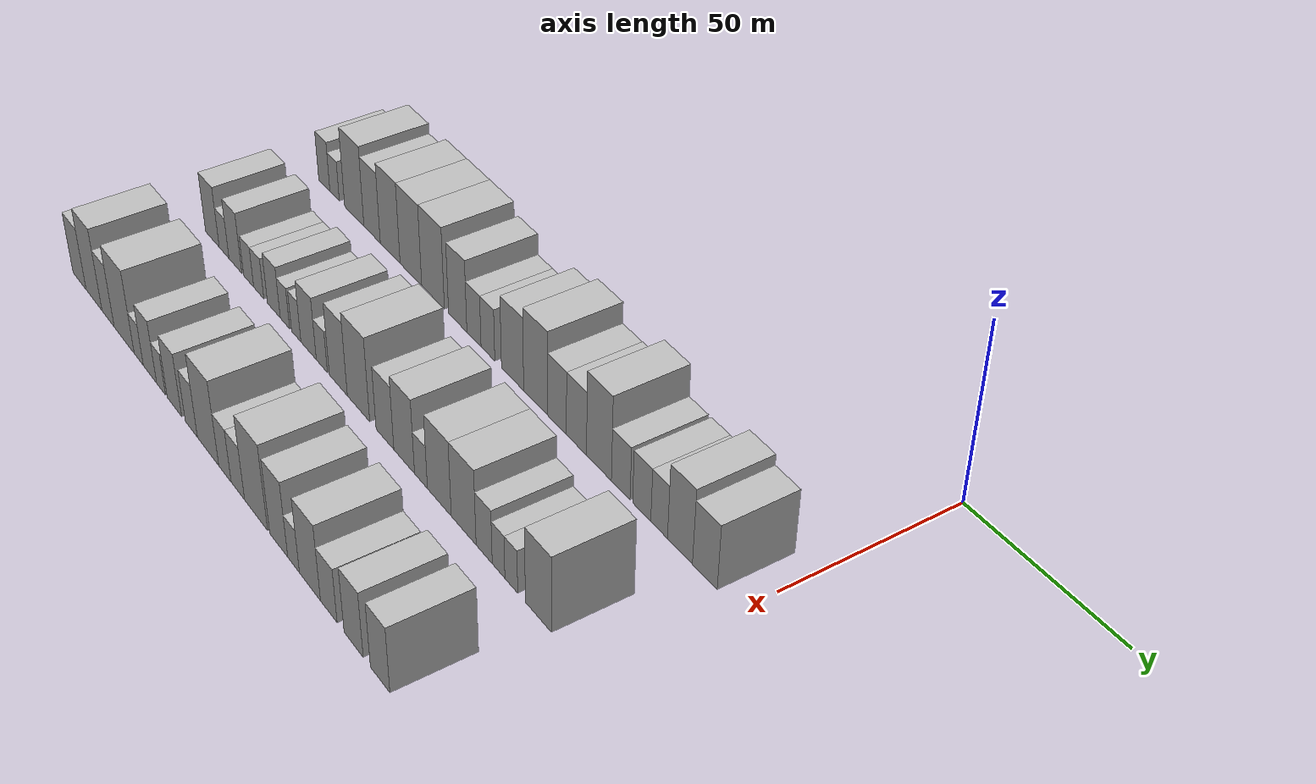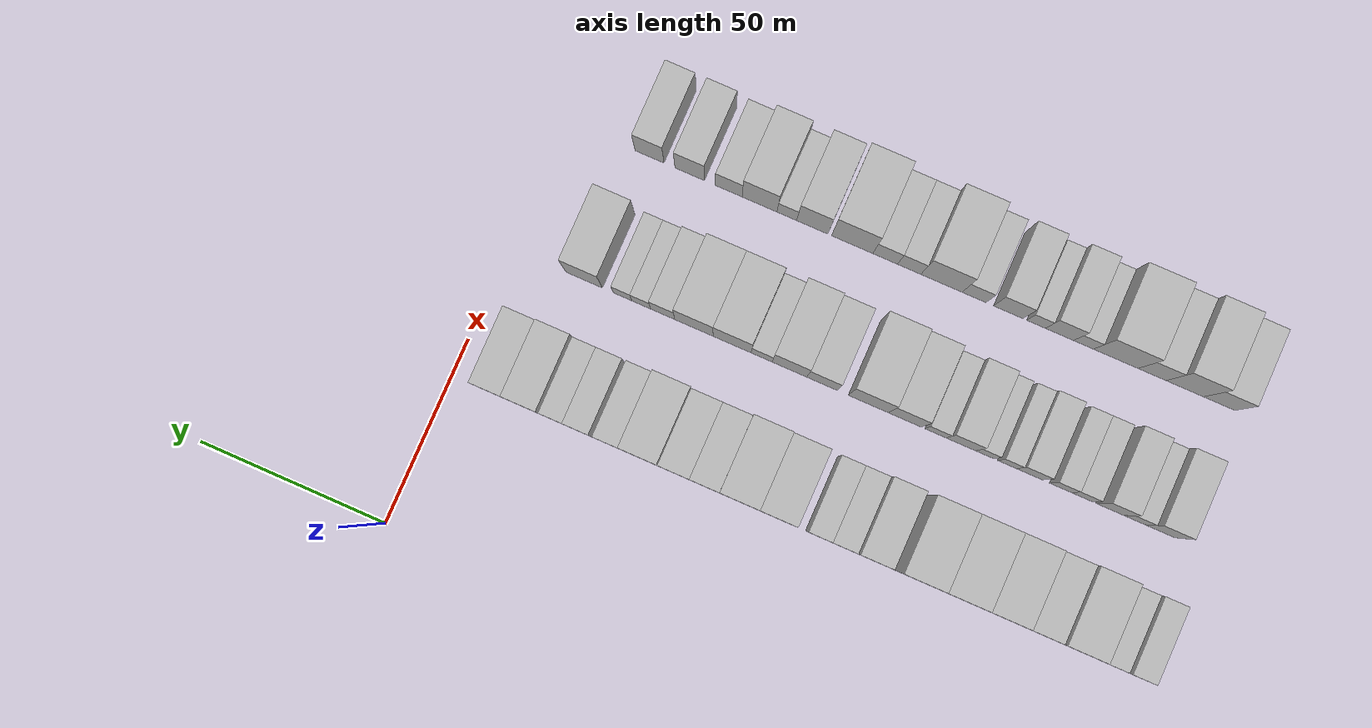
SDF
<sdf version="1.6">
 <world name="default">
  <model name="building_20">
   <static>1</static>
   <pose>50.0000 -182.0511 0 0.000000 0.000000 0.000000</pose>
   <link name="link">
    <pose>0 0 7.50 0 0 0</pose>
    <collision name="collision"><geometry><box><size>20.0000 6.3132 15.0000</size></box></geometry></collision>
    <visual name="visual">
     <cast_shadows>0</cast_shadows>
     <geometry><box><size>20.0000 6.3132 15.0000</size></box></geometry>
     <material>
      <script>
       <uri>model://HANNAS_wall/materials/scripts</uri>
       <uri>model://HANNAS_wall/materials/textures</uri>
       <name>vrc/HANNAS_wall</name>
      </script>
     </material>
    </visual>
   </link>
  </model>
  <model name="building_21">
   <static>1</static>
   <pose>50.0000 -176.2646 0 0.000000 0.000000 0.000000</pose>
   <link name="link">
    <pose>0 0 6.00 0 0 0</pose>
    <collision name="collision"><geometry><box><size>20.0000 5.2599 12.0000</size></box></geometry></collision>
    <visual name="visual">
     <cast_shadows>0</cast_shadows>
     <geometry><box><size>20.0000 5.2599 12.0000</size></box></geometry>
     <material>
      <script>
       <uri>model://HANNAS_wall/materials/scripts</uri>
       <uri>model://HANNAS_wall/materials/textures</uri>
       <name>vrc/HANNAS_wall</name>
      </script>
     </material>
    </visual>
   </link>
  </model>
  <model name="building_22">
   <static>1</static>
   <pose>50.0000 -165.3930 0 0.000000 0.000000 0.000000</pose>
   <link name="link">
    <pose>0 0 12.00 0 0 0</pose>
    <collision name="collision"><geometry><box><size>20.0000 10.4833 24.0000</size></box></geometry></collision>
    <visual name="visual">
     <cast_shadows>0</cast_shadows>
     <geometry><box><size>20.0000 10.4833 24.0000</size></box></geometry>
     <material>
      <script>
       <uri>model://HANNAS_wall/materials/scripts</uri>
       <uri>model://HANNAS_wall/materials/textures</uri>
       <name>vrc/HANNAS_wall</name>
      </script>
     </material>
    </visual>
   </link>
  </model>
  <model name="building_23">
   <static>1</static>
   <pose>50.0000 -155.7915 0 0.000000 0.000000 0.000000</pose>
   <link name="link">
    <pose>0 0 10.50 0 0 0</pose>
    <collision name="collision"><geometry><box><size>20.0000 8.7197 21.0000</size></box></geometry></collision>
    <visual name="visual">
     <cast_shadows>0</cast_shadows>
     <geometry><box><size>20.0000 8.7197 21.0000</size></box></geometry>
     <material>
      <script>
       <uri>model://HANNAS_wall/materials/scripts</uri>
       <uri>model://HANNAS_wall/materials/textures</uri>
       <name>vrc/HANNAS_wall</name>
      </script>
     </material>
    </visual>
   </link>
  </model>
  <model name="building_24">
   <static>1</static>
   <pose>50.0000 -146.2969 0 0.000000 0.000000 0.000000</pose>
   <link name="link">
    <pose>0 0 12.00 0 0 0</pose>
    <collision name="collision"><geometry><box><size>20.0000 10.2695 24.0000</size></box></geometry></collision>
    <visual name="visual">
     <cast_shadows>0</cast_shadows>
     <geometry><box><size>20.0000 10.2695 24.0000</size></box></geometry>
     <material>
      <script>
       <uri>model://HANNAS_wall/materials/scripts</uri>
       <uri>model://HANNAS_wall/materials/textures</uri>
       <name>vrc/HANNAS_wall</name>
      </script>
     </material>
    </visual>
   </link>
  </model>
  <model name="building_25">
   <static>1</static>
   <pose>50.0000 -135.6973 0 0.000000 0.000000 0.000000</pose>
   <link name="link">
    <pose>0 0 12.00 0 0 0</pose>
    <collision name="collision"><geometry><box><size>20.0000 10.9298 24.0000</size></box></geometry></collision>
    <visual name="visual">
     <cast_shadows>0</cast_shadows>
     <geometry><box><size>20.0000 10.9298 24.0000</size></box></geometry>
     <material>
      <script>
       <uri>model://HANNAS_wall/materials/scripts</uri>
       <uri>model://HANNAS_wall/materials/textures</uri>
       <name>vrc/HANNAS_wall</name>
      </script>
     </material>
    </visual>
   </link>
  </model>
  <model name="building_26">
   <static>1</static>
   <pose>50.0000 -124.6595 0 0.000000 0.000000 0.000000</pose>
   <link name="link">
    <pose>0 0 12.00 0 0 0</pose>
    <collision name="collision"><geometry><box><size>20.0000 11.1458 24.0000</size></box></geometry></collision>
    <visual name="visual">
     <cast_shadows>0</cast_shadows>
     <geometry><box><size>20.0000 11.1458 24.0000</size></box></geometry>
     <material>
      <script>
       <uri>model://HANNAS_wall/materials/scripts</uri>
       <uri>model://HANNAS_wall/materials/textures</uri>
       <name>vrc/HANNAS_wall</name>
      </script>
     </material>
    </visual>
   </link>
  </model>
  <model name="building_27">
   <static>1</static>
   <pose>50.0000 -112.7458 0 0.000000 0.000000 0.000000</pose>
   <link name="link">
    <pose>0 0 10.50 0 0 0</pose>
    <collision name="collision"><geometry><box><size>20.0000 8.6816 21.0000</size></box></geometry></collision>
    <visual name="visual">
     <cast_shadows>0</cast_shadows>
     <geometry><box><size>20.0000 8.6816 21.0000</size></box></geometry>
     <material>
      <script>
       <uri>model://HANNAS_wall/materials/scripts</uri>
       <uri>model://HANNAS_wall/materials/textures</uri>
       <name>vrc/HANNAS_wall</name>
      </script>
     </material>
    </visual>
   </link>
  </model>
  <model name="building_28">
   <static>1</static>
   <pose>50.0000 -105.1109 0 0.000000 0.000000 0.000000</pose>
   <link name="link">
    <pose>0 0 7.50 0 0 0</pose>
    <collision name="collision"><geometry><box><size>20.0000 6.5881 15.0000</size></box></geometry></collision>
    <visual name="visual">
     <cast_shadows>0</cast_shadows>
     <geometry><box><size>20.0000 6.5881 15.0000</size></box></geometry>
     <material>
      <script>
       <uri>model://HANNAS_wall/materials/scripts</uri>
       <uri>model://HANNAS_wall/materials/textures</uri>
       <name>vrc/HANNAS_wall</name>
      </script>
     </material>
    </visual>
   </link>
  </model>
  <model name="building_29">
   <static>1</static>
   <pose>50.0000 -98.6793 0 0.000000 0.000000 0.000000</pose>
   <link name="link">
    <pose>0 0 7.50 0 0 0</pose>
    <collision name="collision"><geometry><box><size>20.0000 6.2752 15.0000</size></box></geometry></collision>
    <visual name="visual">
     <cast_shadows>0</cast_shadows>
     <geometry><box><size>20.0000 6.2752 15.0000</size></box></geometry>
     <material>
      <script>
       <uri>model://HANNAS_wall/materials/scripts</uri>
       <uri>model://HANNAS_wall/materials/textures</uri>
       <name>vrc/HANNAS_wall</name>
      </script>
     </material>
    </visual>
   </link>
  </model>
  <model name="building_30">
   <static>1</static>
   <pose>50.0000 -87.6267 0 0.000000 0.000000 0.000000</pose>
   <link name="link">
    <pose>0 0 10.50 0 0 0</pose>
    <collision name="collision"><geometry><box><size>20.0000 9.8299 21.0000</size></box></geometry></collision>
    <visual name="visual">
     <cast_shadows>0</cast_shadows>
     <geometry><box><size>20.0000 9.8299 21.0000</size></box></geometry>
     <material>
      <script>
       <uri>model://HANNAS_wall/materials/scripts</uri>
       <uri>model://HANNAS_wall/materials/textures</uri>
       <name>vrc/HANNAS_wall</name>
      </script>
     </material>
    </visual>
   </link>
  </model>
  <model name="building_31">
   <static>1</static>
   <pose>50.0000 -77.5489 0 0.000000 0.000000 0.000000</pose>
   <link name="link">
    <pose>0 0 12.00 0 0 0</pose>
    <collision name="collision"><geometry><box><size>20.0000 10.3258 24.0000</size></box></geometry></collision>
    <visual name="visual">
     <cast_shadows>0</cast_shadows>
     <geometry><box><size>20.0000 10.3258 24.0000</size></box></geometry>
     <material>
      <script>
       <uri>model://HANNAS_wall/materials/scripts</uri>
       <uri>model://HANNAS_wall/materials/textures</uri>
       <name>vrc/HANNAS_wall</name>
      </script>
     </material>
    </visual>
   </link>
  </model>
  <model name="building_32">
   <static>1</static>
   <pose>50.0000 -68.4582 0 0.000000 0.000000 0.000000</pose>
   <link name="link">
    <pose>0 0 9.00 0 0 0</pose>
    <collision name="collision"><geometry><box><size>20.0000 7.8557 18.0000</size></box></geometry></collision>
    <visual name="visual">
     <cast_shadows>0</cast_shadows>
     <geometry><box><size>20.0000 7.8557 18.0000</size></box></geometry>
     <material>
      <script>
       <uri>model://HANNAS_wall/materials/scripts</uri>
       <uri>model://HANNAS_wall/materials/textures</uri>
       <name>vrc/HANNAS_wall</name>
      </script>
     </material>
    </visual>
   </link>
  </model>
  <model name="building_33">
   <static>1</static>
   <pose>50.0000 -60.4181 0 0.000000 0.000000 0.000000</pose>
   <link name="link">
    <pose>0 0 9.00 0 0 0</pose>
    <collision name="collision"><geometry><box><size>20.0000 8.2246 18.0000</size></box></geometry></collision>
    <visual name="visual">
     <cast_shadows>0</cast_shadows>
     <geometry><box><size>20.0000 8.2246 18.0000</size></box></geometry>
     <material>
      <script>
       <uri>model://HANNAS_wall/materials/scripts</uri>
       <uri>model://HANNAS_wall/materials/textures</uri>
       <name>vrc/HANNAS_wall</name>
      </script>
     </material>
    </visual>
   </link>
  </model>
  <model name="building_34">
   <static>1</static>
   <pose>50.0000 -51.3394 0 0.000000 0.000000 0.000000</pose>
   <link name="link">
    <pose>0 0 12.00 0 0 0</pose>
    <collision name="collision"><geometry><box><size>20.0000 9.9328 24.0000</size></box></geometry></collision>
    <visual name="visual">
     <cast_shadows>0</cast_shadows>
     <geometry><box><size>20.0000 9.9328 24.0000</size></box></geometry>
     <material>
      <script>
       <uri>model://HANNAS_wall/materials/scripts</uri>
       <uri>model://HANNAS_wall/materials/textures</uri>
       <name>vrc/HANNAS_wall</name>
      </script>
     </material>
    </visual>
   </link>
  </model>
  <model name="building_35">
   <static>1</static>
   <pose>50.0000 -42.7556 0 0.000000 0.000000 0.000000</pose>
   <link name="link">
    <pose>0 0 7.50 0 0 0</pose>
    <collision name="collision"><geometry><box><size>20.0000 7.2349 15.0000</size></box></geometry></collision>
    <visual name="visual">
     <cast_shadows>0</cast_shadows>
     <geometry><box><size>20.0000 7.2349 15.0000</size></box></geometry>
     <material>
      <script>
       <uri>model://HANNAS_wall/materials/scripts</uri>
       <uri>model://HANNAS_wall/materials/textures</uri>
       <name>vrc/HANNAS_wall</name>
      </script>
     </material>
    </visual>
   </link>
  </model>
  <model name="building_36">
   <static>1</static>
   <pose>50.0000 -34.6981 0 0.000000 0.000000 0.000000</pose>
   <link name="link">
    <pose>0 0 7.50 0 0 0</pose>
    <collision name="collision"><geometry><box><size>20.0000 6.8800 15.0000</size></box></geometry></collision>
    <visual name="visual">
     <cast_shadows>0</cast_shadows>
     <geometry><box><size>20.0000 6.8800 15.0000</size></box></geometry>
     <material>
      <script>
       <uri>model://HANNAS_wall/materials/scripts</uri>
       <uri>model://HANNAS_wall/materials/textures</uri>
       <name>vrc/HANNAS_wall</name>
      </script>
     </material>
    </visual>
   </link>
  </model>
  <model name="building_37">
   <static>1</static>
   <pose>50.0000 -28.1629 0 0.000000 0.000000 0.000000</pose>
   <link name="link">
    <pose>0 0 7.50 0 0 0</pose>
    <collision name="collision"><geometry><box><size>20.0000 6.1905 15.0000</size></box></geometry></collision>
    <visual name="visual">
     <cast_shadows>0</cast_shadows>
     <geometry><box><size>20.0000 6.1905 15.0000</size></box></geometry>
     <material>
      <script>
       <uri>model://HANNAS_wall/materials/scripts</uri>
       <uri>model://HANNAS_wall/materials/textures</uri>
       <name>vrc/HANNAS_wall</name>
      </script>
     </material>
    </visual>
   </link>
  </model>
  <model name="building_38">
   <static>1</static>
   <pose>50.0000 -20.5236 0 0.000000 0.000000 0.000000</pose>
   <link name="link">
    <pose>0 0 10.50 0 0 0</pose>
    <collision name="collision"><geometry><box><size>20.0000 9.0881 21.0000</size></box></geometry></collision>
    <visual name="visual">
     <cast_shadows>0</cast_shadows>
     <geometry><box><size>20.0000 9.0881 21.0000</size></box></geometry>
     <material>
      <script>
       <uri>model://HANNAS_wall/materials/scripts</uri>
       <uri>model://HANNAS_wall/materials/textures</uri>
       <name>vrc/HANNAS_wall</name>
      </script>
     </material>
    </visual>
   </link>
  </model>
  <model name="building_39">
   <static>1</static>
   <pose>50.0000 -11.6180 0 0.000000 0.000000 0.000000</pose>
   <link name="link">
    <pose>0 0 9.00 0 0 0</pose>
    <collision name="collision"><geometry><box><size>20.0000 8.7230 18.0000</size></box></geometry></collision>
    <visual name="visual">
     <cast_shadows>0</cast_shadows>
     <geometry><box><size>20.0000 8.7230 18.0000</size></box></geometry>
     <material>
      <script>
       <uri>model://HANNAS_wall/materials/scripts</uri>
       <uri>model://HANNAS_wall/materials/textures</uri>
       <name>vrc/HANNAS_wall</name>
      </script>
     </material>
    </visual>
   </link>
  </model>
  <model name="building_98">
   <static>1</static>
   <pose>85.0000 -175.5537 0 0.000000 0.000000 0.000000</pose>
   <link name="link">
    <pose>0 0 9.00 0 0 0</pose>
    <collision name="collision"><geometry><box><size>20.0000 8.0744 18.0000</size></box></geometry></collision>
    <visual name="visual">
     <cast_shadows>0</cast_shadows>
     <geometry><box><size>20.0000 8.0744 18.0000</size></box></geometry>
     <material>
      <script>
       <uri>model://HANNAS_wall/materials/scripts</uri>
       <uri>model://HANNAS_wall/materials/textures</uri>
       <name>vrc/HANNAS_wall</name>
      </script>
     </material>
    </visual>
   </link>
  </model>
  <model name="building_99">
   <static>1</static>
   <pose>85.0000 -168.6717 0 0.000000 0.000000 0.000000</pose>
   <link name="link">
    <pose>0 0 6.00 0 0 0</pose>
    <collision name="collision"><geometry><box><size>20.0000 5.6895 12.0000</size></box></geometry></collision>
    <visual name="visual">
     <cast_shadows>0</cast_shadows>
     <geometry><box><size>20.0000 5.6895 12.0000</size></box></geometry>
     <material>
      <script>
       <uri>model://HANNAS_wall/materials/scripts</uri>
       <uri>model://HANNAS_wall/materials/textures</uri>
       <name>vrc/HANNAS_wall</name>
      </script>
     </material>
    </visual>
   </link>
  </model>
  <model name="building_100">
   <static>1</static>
   <pose>85.0000 -162.1082 0 0.000000 0.000000 0.000000</pose>
   <link name="link">
    <pose>0 0 9.00 0 0 0</pose>
    <collision name="collision"><geometry><box><size>20.0000 7.4374 18.0000</size></box></geometry></collision>
    <visual name="visual">
     <cast_shadows>0</cast_shadows>
     <geometry><box><size>20.0000 7.4374 18.0000</size></box></geometry>
     <material>
      <script>
       <uri>model://HANNAS_wall/materials/scripts</uri>
       <uri>model://HANNAS_wall/materials/textures</uri>
       <name>vrc/HANNAS_wall</name>
      </script>
     </material>
    </visual>
   </link>
  </model>
  <model name="building_101">
   <static>1</static>
   <pose>85.0000 -154.5526 0 0.000000 0.000000 0.000000</pose>
   <link name="link">
    <pose>0 0 6.00 0 0 0</pose>
    <collision name="collision"><geometry><box><size>20.0000 5.6739 12.0000</size></box></geometry></collision>
    <visual name="visual">
     <cast_shadows>0</cast_shadows>
     <geometry><box><size>20.0000 5.6739 12.0000</size></box></geometry>
     <material>
      <script>
       <uri>model://HANNAS_wall/materials/scripts</uri>
       <uri>model://HANNAS_wall/materials/textures</uri>
       <name>vrc/HANNAS_wall</name>
      </script>
     </material>
    </visual>
   </link>
  </model>
  <model name="building_102">
   <static>1</static>
   <pose>85.0000 -148.8902 0 0.000000 0.000000 0.000000</pose>
   <link name="link">
    <pose>0 0 6.00 0 0 0</pose>
    <collision name="collision"><geometry><box><size>20.0000 5.6509 12.0000</size></box></geometry></collision>
    <visual name="visual">
     <cast_shadows>0</cast_shadows>
     <geometry><box><size>20.0000 5.6509 12.0000</size></box></geometry>
     <material>
      <script>
       <uri>model://HANNAS_wall/materials/scripts</uri>
       <uri>model://HANNAS_wall/materials/textures</uri>
       <name>vrc/HANNAS_wall</name>
      </script>
     </material>
    </visual>
   </link>
  </model>
  <model name="building_103">
   <static>1</static>
   <pose>85.0000 -140.5905 0 0.000000 0.000000 0.000000</pose>
   <link name="link">
    <pose>0 0 7.50 0 0 0</pose>
    <collision name="collision"><geometry><box><size>20.0000 6.9485 15.0000</size></box></geometry></collision>
    <visual name="visual">
     <cast_shadows>0</cast_shadows>
     <geometry><box><size>20.0000 6.9485 15.0000</size></box></geometry>
     <material>
      <script>
       <uri>model://HANNAS_wall/materials/scripts</uri>
       <uri>model://HANNAS_wall/materials/textures</uri>
       <name>vrc/HANNAS_wall</name>
      </script>
     </material>
    </visual>
   </link>
  </model>
  <model name="building_104">
   <static>1</static>
   <pose>85.0000 -134.6104 0 0.000000 0.000000 0.000000</pose>
   <link name="link">
    <pose>0 0 6.00 0 0 0</pose>
    <collision name="collision"><geometry><box><size>20.0000 5.0116 12.0000</size></box></geometry></collision>
    <visual name="visual">
     <cast_shadows>0</cast_shadows>
     <geometry><box><size>20.0000 5.0116 12.0000</size></box></geometry>
     <material>
      <script>
       <uri>model://HANNAS_wall/materials/scripts</uri>
       <uri>model://HANNAS_wall/materials/textures</uri>
       <name>vrc/HANNAS_wall</name>
      </script>
     </material>
    </visual>
   </link>
  </model>
  <model name="building_105">
   <static>1</static>
   <pose>85.0000 -128.6459 0 0.000000 0.000000 0.000000</pose>
   <link name="link">
    <pose>0 0 6.00 0 0 0</pose>
    <collision name="collision"><geometry><box><size>20.0000 4.9175 12.0000</size></box></geometry></collision>
    <visual name="visual">
     <cast_shadows>0</cast_shadows>
     <geometry><box><size>20.0000 4.9175 12.0000</size></box></geometry>
     <material>
      <script>
       <uri>model://HANNAS_wall/materials/scripts</uri>
       <uri>model://HANNAS_wall/materials/textures</uri>
       <name>vrc/HANNAS_wall</name>
      </script>
     </material>
    </visual>
   </link>
  </model>
  <model name="building_106">
   <static>1</static>
   <pose>85.0000 -122.2087 0 0.000000 0.000000 0.000000</pose>
   <link name="link">
    <pose>0 0 9.00 0 0 0</pose>
    <collision name="collision"><geometry><box><size>20.0000 7.9568 18.0000</size></box></geometry></collision>
    <visual name="visual">
     <cast_shadows>0</cast_shadows>
     <geometry><box><size>20.0000 7.9568 18.0000</size></box></geometry>
     <material>
      <script>
       <uri>model://HANNAS_wall/materials/scripts</uri>
       <uri>model://HANNAS_wall/materials/textures</uri>
       <name>vrc/HANNAS_wall</name>
      </script>
     </material>
    </visual>
   </link>
  </model>
  <model name="building_107">
   <static>1</static>
   <pose>85.0000 -115.4141 0 0.000000 0.000000 0.000000</pose>
   <link name="link">
    <pose>0 0 6.00 0 0 0</pose>
    <collision name="collision"><geometry><box><size>20.0000 5.6324 12.0000</size></box></geometry></collision>
    <visual name="visual">
     <cast_shadows>0</cast_shadows>
     <geometry><box><size>20.0000 5.6324 12.0000</size></box></geometry>
     <material>
      <script>
       <uri>model://HANNAS_wall/materials/scripts</uri>
       <uri>model://HANNAS_wall/materials/textures</uri>
       <name>vrc/HANNAS_wall</name>
      </script>
     </material>
    </visual>
   </link>
  </model>
  <model name="building_108">
   <static>1</static>
   <pose>85.0000 -107.1601 0 0.000000 0.000000 0.000000</pose>
   <link name="link">
    <pose>0 0 10.50 0 0 0</pose>
    <collision name="collision"><geometry><box><size>20.0000 8.8755 21.0000</size></box></geometry></collision>
    <visual name="visual">
     <cast_shadows>0</cast_shadows>
     <geometry><box><size>20.0000 8.8755 21.0000</size></box></geometry>
     <material>
      <script>
       <uri>model://HANNAS_wall/materials/scripts</uri>
       <uri>model://HANNAS_wall/materials/textures</uri>
       <name>vrc/HANNAS_wall</name>
      </script>
     </material>
    </visual>
   </link>
  </model>
  <model name="building_109">
   <static>1</static>
   <pose>85.0000 -97.3395 0 0.000000 0.000000 0.000000</pose>
   <link name="link">
    <pose>0 0 12.00 0 0 0</pose>
    <collision name="collision"><geometry><box><size>20.0000 10.7658 24.0000</size></box></geometry></collision>
    <visual name="visual">
     <cast_shadows>0</cast_shadows>
     <geometry><box><size>20.0000 10.7658 24.0000</size></box></geometry>
     <material>
      <script>
       <uri>model://HANNAS_wall/materials/scripts</uri>
       <uri>model://HANNAS_wall/materials/textures</uri>
       <name>vrc/HANNAS_wall</name>
      </script>
     </material>
    </visual>
   </link>
  </model>
  <model name="building_110">
   <static>1</static>
   <pose>85.0000 -84.8275 0 0.000000 0.000000 0.000000</pose>
   <link name="link">
    <pose>0 0 9.00 0 0 0</pose>
    <collision name="collision"><geometry><box><size>20.0000 8.2581 18.0000</size></box></geometry></collision>
    <visual name="visual">
     <cast_shadows>0</cast_shadows>
     <geometry><box><size>20.0000 8.2581 18.0000</size></box></geometry>
     <material>
      <script>
       <uri>model://HANNAS_wall/materials/scripts</uri>
       <uri>model://HANNAS_wall/materials/textures</uri>
       <name>vrc/HANNAS_wall</name>
      </script>
     </material>
    </visual>
   </link>
  </model>
  <model name="building_111">
   <static>1</static>
   <pose>85.0000 -76.0206 0 0.000000 0.000000 0.000000</pose>
   <link name="link">
    <pose>0 0 10.50 0 0 0</pose>
    <collision name="collision"><geometry><box><size>20.0000 9.3557 21.0000</size></box></geometry></collision>
    <visual name="visual">
     <cast_shadows>0</cast_shadows>
     <geometry><box><size>20.0000 9.3557 21.0000</size></box></geometry>
     <material>
      <script>
       <uri>model://HANNAS_wall/materials/scripts</uri>
       <uri>model://HANNAS_wall/materials/textures</uri>
       <name>vrc/HANNAS_wall</name>
      </script>
     </material>
    </visual>
   </link>
  </model>
  <model name="building_112">
   <static>1</static>
   <pose>85.0000 -68.4921 0 0.000000 0.000000 0.000000</pose>
   <link name="link">
    <pose>0 0 6.00 0 0 0</pose>
    <collision name="collision"><geometry><box><size>20.0000 5.7014 12.0000</size></box></geometry></collision>
    <visual name="visual">
     <cast_shadows>0</cast_shadows>
     <geometry><box><size>20.0000 5.7014 12.0000</size></box></geometry>
     <material>
      <script>
       <uri>model://HANNAS_wall/materials/scripts</uri>
       <uri>model://HANNAS_wall/materials/textures</uri>
       <name>vrc/HANNAS_wall</name>
      </script>
     </material>
    </visual>
   </link>
  </model>
  <model name="building_113">
   <static>1</static>
   <pose>85.0000 -60.4939 0 0.000000 0.000000 0.000000</pose>
   <link name="link">
    <pose>0 0 10.50 0 0 0</pose>
    <collision name="collision"><geometry><box><size>20.0000 10.2948 21.0000</size></box></geometry></collision>
    <visual name="visual">
     <cast_shadows>0</cast_shadows>
     <geometry><box><size>20.0000 10.2948 21.0000</size></box></geometry>
     <material>
      <script>
       <uri>model://HANNAS_wall/materials/scripts</uri>
       <uri>model://HANNAS_wall/materials/textures</uri>
       <name>vrc/HANNAS_wall</name>
      </script>
     </material>
    </visual>
   </link>
  </model>
  <model name="building_114">
   <static>1</static>
   <pose>85.0000 -50.1482 0 0.000000 0.000000 0.000000</pose>
   <link name="link">
    <pose>0 0 10.50 0 0 0</pose>
    <collision name="collision"><geometry><box><size>20.0000 10.3967 21.0000</size></box></geometry></collision>
    <visual name="visual">
     <cast_shadows>0</cast_shadows>
     <geometry><box><size>20.0000 10.3967 21.0000</size></box></geometry>
     <material>
      <script>
       <uri>model://HANNAS_wall/materials/scripts</uri>
       <uri>model://HANNAS_wall/materials/textures</uri>
       <name>vrc/HANNAS_wall</name>
      </script>
     </material>
    </visual>
   </link>
  </model>
  <model name="building_115">
   <static>1</static>
   <pose>85.0000 -41.6695 0 0.000000 0.000000 0.000000</pose>
   <link name="link">
    <pose>0 0 7.50 0 0 0</pose>
    <collision name="collision"><geometry><box><size>20.0000 6.5607 15.0000</size></box></geometry></collision>
    <visual name="visual">
     <cast_shadows>0</cast_shadows>
     <geometry><box><size>20.0000 6.5607 15.0000</size></box></geometry>
     <material>
      <script>
       <uri>model://HANNAS_wall/materials/scripts</uri>
       <uri>model://HANNAS_wall/materials/textures</uri>
       <name>vrc/HANNAS_wall</name>
      </script>
     </material>
    </visual>
   </link>
  </model>
  <model name="building_116">
   <static>1</static>
   <pose>85.0000 -35.8572 0 0.000000 0.000000 0.000000</pose>
   <link name="link">
    <pose>0 0 6.00 0 0 0</pose>
    <collision name="collision"><geometry><box><size>20.0000 5.0639 12.0000</size></box></geometry></collision>
    <visual name="visual">
     <cast_shadows>0</cast_shadows>
     <geometry><box><size>20.0000 5.0639 12.0000</size></box></geometry>
     <material>
      <script>
       <uri>model://HANNAS_wall/materials/scripts</uri>
       <uri>model://HANNAS_wall/materials/textures</uri>
       <name>vrc/HANNAS_wall</name>
      </script>
     </material>
    </visual>
   </link>
  </model>
  <model name="building_117">
   <static>1</static>
   <pose>85.0000 -30.8068 0 0.000000 0.000000 0.000000</pose>
   <link name="link">
    <pose>0 0 6.00 0 0 0</pose>
    <collision name="collision"><geometry><box><size>20.0000 5.0368 12.0000</size></box></geometry></collision>
    <visual name="visual">
     <cast_shadows>0</cast_shadows>
     <geometry><box><size>20.0000 5.0368 12.0000</size></box></geometry>
     <material>
      <script>
       <uri>model://HANNAS_wall/materials/scripts</uri>
       <uri>model://HANNAS_wall/materials/textures</uri>
       <name>vrc/HANNAS_wall</name>
      </script>
     </material>
    </visual>
   </link>
  </model>
  <model name="building_118">
   <static>1</static>
   <pose>85.0000 -20.3149 0 0.000000 0.000000 0.000000</pose>
   <link name="link">
    <pose>0 0 10.50 0 0 0</pose>
    <collision name="collision"><geometry><box><size>20.0000 9.9470 21.0000</size></box></geometry></collision>
    <visual name="visual">
     <cast_shadows>0</cast_shadows>
     <geometry><box><size>20.0000 9.9470 21.0000</size></box></geometry>
     <material>
      <script>
       <uri>model://HANNAS_wall/materials/scripts</uri>
       <uri>model://HANNAS_wall/materials/textures</uri>
       <name>vrc/HANNAS_wall</name>
      </script>
     </material>
    </visual>
   </link>
  </model>
  <model name="building_180">
   <static>1</static>
   <pose>120.0000 -176.9401 0 0.000000 0.000000 0.000000</pose>
   <link name="link">
    <pose>0 0 9.00 0 0 0</pose>
    <collision name="collision"><geometry><box><size>20.0000 8.4719 18.0000</size></box></geometry></collision>
    <visual name="visual">
     <cast_shadows>0</cast_shadows>
     <geometry><box><size>20.0000 8.4719 18.0000</size></box></geometry>
     <material>
      <script>
       <uri>model://HANNAS_wall/materials/scripts</uri>
       <uri>model://HANNAS_wall/materials/textures</uri>
       <name>vrc/HANNAS_wall</name>
      </script>
     </material>
    </visual>
   </link>
  </model>
  <model name="building_181">
   <static>1</static>
   <pose>120.0000 -167.6942 0 0.000000 0.000000 0.000000</pose>
   <link name="link">
    <pose>0 0 12.00 0 0 0</pose>
    <collision name="collision"><geometry><box><size>20.0000 10.0200 24.0000</size></box></geometry></collision>
    <visual name="visual">
     <cast_shadows>0</cast_shadows>
     <geometry><box><size>20.0000 10.0200 24.0000</size></box></geometry>
     <material>
      <script>
       <uri>model://HANNAS_wall/materials/scripts</uri>
       <uri>model://HANNAS_wall/materials/textures</uri>
       <name>vrc/HANNAS_wall</name>
      </script>
     </material>
    </visual>
   </link>
  </model>
  <model name="building_182">
   <static>1</static>
   <pose>120.0000 -158.9383 0 0.000000 0.000000 0.000000</pose>
   <link name="link">
    <pose>0 0 9.00 0 0 0</pose>
    <collision name="collision"><geometry><box><size>20.0000 7.4918 18.0000</size></box></geometry></collision>
    <visual name="visual">
     <cast_shadows>0</cast_shadows>
     <geometry><box><size>20.0000 7.4918 18.0000</size></box></geometry>
     <material>
      <script>
       <uri>model://HANNAS_wall/materials/scripts</uri>
       <uri>model://HANNAS_wall/materials/textures</uri>
       <name>vrc/HANNAS_wall</name>
      </script>
     </material>
    </visual>
   </link>
  </model>
  <model name="building_183">
   <static>1</static>
   <pose>120.0000 -149.1939 0 0.000000 0.000000 0.000000</pose>
   <link name="link">
    <pose>0 0 12.00 0 0 0</pose>
    <collision name="collision"><geometry><box><size>20.0000 11.9969 24.0000</size></box></geometry></collision>
    <visual name="visual">
     <cast_shadows>0</cast_shadows>
     <geometry><box><size>20.0000 11.9969 24.0000</size></box></geometry>
     <material>
      <script>
       <uri>model://HANNAS_wall/materials/scripts</uri>
       <uri>model://HANNAS_wall/materials/textures</uri>
       <name>vrc/HANNAS_wall</name>
      </script>
     </material>
    </visual>
   </link>
  </model>
  <model name="building_184">
   <static>1</static>
   <pose>120.0000 -140.5054 0 0.000000 0.000000 0.000000</pose>
   <link name="link">
    <pose>0 0 6.00 0 0 0</pose>
    <collision name="collision"><geometry><box><size>20.0000 5.3800 12.0000</size></box></geometry></collision>
    <visual name="visual">
     <cast_shadows>0</cast_shadows>
     <geometry><box><size>20.0000 5.3800 12.0000</size></box></geometry>
     <material>
      <script>
       <uri>model://HANNAS_wall/materials/scripts</uri>
       <uri>model://HANNAS_wall/materials/textures</uri>
       <name>vrc/HANNAS_wall</name>
      </script>
     </material>
    </visual>
   </link>
  </model>
  <model name="building_185">
   <static>1</static>
   <pose>120.0000 -134.0123 0 0.000000 0.000000 0.000000</pose>
   <link name="link">
    <pose>0 0 9.00 0 0 0</pose>
    <collision name="collision"><geometry><box><size>20.0000 7.6062 18.0000</size></box></geometry></collision>
    <visual name="visual">
     <cast_shadows>0</cast_shadows>
     <geometry><box><size>20.0000 7.6062 18.0000</size></box></geometry>
     <material>
      <script>
       <uri>model://HANNAS_wall/materials/scripts</uri>
       <uri>model://HANNAS_wall/materials/textures</uri>
       <name>vrc/HANNAS_wall</name>
      </script>
     </material>
    </visual>
   </link>
  </model>
  <model name="building_186">
   <static>1</static>
   <pose>120.0000 -127.7039 0 0.000000 0.000000 0.000000</pose>
   <link name="link">
    <pose>0 0 6.00 0 0 0</pose>
    <collision name="collision"><geometry><box><size>20.0000 5.0107 12.0000</size></box></geometry></collision>
    <visual name="visual">
     <cast_shadows>0</cast_shadows>
     <geometry><box><size>20.0000 5.0107 12.0000</size></box></geometry>
     <material>
      <script>
       <uri>model://HANNAS_wall/materials/scripts</uri>
       <uri>model://HANNAS_wall/materials/textures</uri>
       <name>vrc/HANNAS_wall</name>
      </script>
     </material>
    </visual>
   </link>
  </model>
  <model name="building_187">
   <static>1</static>
   <pose>120.0000 -120.2284 0 0.000000 0.000000 0.000000</pose>
   <link name="link">
    <pose>0 0 9.00 0 0 0</pose>
    <collision name="collision"><geometry><box><size>20.0000 7.9403 18.0000</size></box></geometry></collision>
    <visual name="visual">
     <cast_shadows>0</cast_shadows>
     <geometry><box><size>20.0000 7.9403 18.0000</size></box></geometry>
     <material>
      <script>
       <uri>model://HANNAS_wall/materials/scripts</uri>
       <uri>model://HANNAS_wall/materials/textures</uri>
       <name>vrc/HANNAS_wall</name>
      </script>
     </material>
    </visual>
   </link>
  </model>
  <model name="building_188">
   <static>1</static>
   <pose>120.0000 -111.0061 0 0.000000 0.000000 0.000000</pose>
   <link name="link">
    <pose>0 0 7.50 0 0 0</pose>
    <collision name="collision"><geometry><box><size>20.0000 6.5045 15.0000</size></box></geometry></collision>
    <visual name="visual">
     <cast_shadows>0</cast_shadows>
     <geometry><box><size>20.0000 6.5045 15.0000</size></box></geometry>
     <material>
      <script>
       <uri>model://HANNAS_wall/materials/scripts</uri>
       <uri>model://HANNAS_wall/materials/textures</uri>
       <name>vrc/HANNAS_wall</name>
      </script>
     </material>
    </visual>
   </link>
  </model>
  <model name="building_189">
   <static>1</static>
   <pose>120.0000 -102.1758 0 0.000000 0.000000 0.000000</pose>
   <link name="link">
    <pose>0 0 12.00 0 0 0</pose>
    <collision name="collision"><geometry><box><size>20.0000 11.1561 24.0000</size></box></geometry></collision>
    <visual name="visual">
     <cast_shadows>0</cast_shadows>
     <geometry><box><size>20.0000 11.1561 24.0000</size></box></geometry>
     <material>
      <script>
       <uri>model://HANNAS_wall/materials/scripts</uri>
       <uri>model://HANNAS_wall/materials/textures</uri>
       <name>vrc/HANNAS_wall</name>
      </script>
     </material>
    </visual>
   </link>
  </model>
  <model name="building_190">
   <static>1</static>
   <pose>120.0000 -93.4246 0 0.000000 0.000000 0.000000</pose>
   <link name="link">
    <pose>0 0 7.50 0 0 0</pose>
    <collision name="collision"><geometry><box><size>20.0000 6.3464 15.0000</size></box></geometry></collision>
    <visual name="visual">
     <cast_shadows>0</cast_shadows>
     <geometry><box><size>20.0000 6.3464 15.0000</size></box></geometry>
     <material>
      <script>
       <uri>model://HANNAS_wall/materials/scripts</uri>
       <uri>model://HANNAS_wall/materials/textures</uri>
       <name>vrc/HANNAS_wall</name>
      </script>
     </material>
    </visual>
   </link>
  </model>
  <model name="building_191">
   <static>1</static>
   <pose>120.0000 -86.8880 0 0.000000 0.000000 0.000000</pose>
   <link name="link">
    <pose>0 0 7.50 0 0 0</pose>
    <collision name="collision"><geometry><box><size>20.0000 6.7267 15.0000</size></box></geometry></collision>
    <visual name="visual">
     <cast_shadows>0</cast_shadows>
     <geometry><box><size>20.0000 6.7267 15.0000</size></box></geometry>
     <material>
      <script>
       <uri>model://HANNAS_wall/materials/scripts</uri>
       <uri>model://HANNAS_wall/materials/textures</uri>
       <name>vrc/HANNAS_wall</name>
      </script>
     </material>
    </visual>
   </link>
  </model>
  <model name="building_192">
   <static>1</static>
   <pose>120.0000 -77.9191 0 0.000000 0.000000 0.000000</pose>
   <link name="link">
    <pose>0 0 12.00 0 0 0</pose>
    <collision name="collision"><geometry><box><size>20.0000 11.2111 24.0000</size></box></geometry></collision>
    <visual name="visual">
     <cast_shadows>0</cast_shadows>
     <geometry><box><size>20.0000 11.2111 24.0000</size></box></geometry>
     <material>
      <script>
       <uri>model://HANNAS_wall/materials/scripts</uri>
       <uri>model://HANNAS_wall/materials/textures</uri>
       <name>vrc/HANNAS_wall</name>
      </script>
     </material>
    </visual>
   </link>
  </model>
  <model name="building_193">
   <static>1</static>
   <pose>120.0000 -67.0645 0 0.000000 0.000000 0.000000</pose>
   <link name="link">
    <pose>0 0 10.50 0 0 0</pose>
    <collision name="collision"><geometry><box><size>20.0000 8.4981 21.0000</size></box></geometry></collision>
    <visual name="visual">
     <cast_shadows>0</cast_shadows>
     <geometry><box><size>20.0000 8.4981 21.0000</size></box></geometry>
     <material>
      <script>
       <uri>model://HANNAS_wall/materials/scripts</uri>
       <uri>model://HANNAS_wall/materials/textures</uri>
       <name>vrc/HANNAS_wall</name>
      </script>
     </material>
    </visual>
   </link>
  </model>
  <model name="building_194">
   <static>1</static>
   <pose>120.0000 -60.1288 0 0.000000 0.000000 0.000000</pose>
   <link name="link">
    <pose>0 0 6.00 0 0 0</pose>
    <collision name="collision"><geometry><box><size>20.0000 5.3735 12.0000</size></box></geometry></collision>
    <visual name="visual">
     <cast_shadows>0</cast_shadows>
     <geometry><box><size>20.0000 5.3735 12.0000</size></box></geometry>
     <material>
      <script>
       <uri>model://HANNAS_wall/materials/scripts</uri>
       <uri>model://HANNAS_wall/materials/textures</uri>
       <name>vrc/HANNAS_wall</name>
      </script>
     </material>
    </visual>
   </link>
  </model>
  <model name="building_195">
   <static>1</static>
   <pose>120.0000 -52.6913 0 0.000000 0.000000 0.000000</pose>
   <link name="link">
    <pose>0 0 10.50 0 0 0</pose>
    <collision name="collision"><geometry><box><size>20.0000 9.5014 21.0000</size></box></geometry></collision>
    <visual name="visual">
     <cast_shadows>0</cast_shadows>
     <geometry><box><size>20.0000 9.5014 21.0000</size></box></geometry>
     <material>
      <script>
       <uri>model://HANNAS_wall/materials/scripts</uri>
       <uri>model://HANNAS_wall/materials/textures</uri>
       <name>vrc/HANNAS_wall</name>
      </script>
     </material>
    </visual>
   </link>
  </model>
  <model name="building_196">
   <static>1</static>
   <pose>120.0000 -44.3000 0 0.000000 0.000000 0.000000</pose>
   <link name="link">
    <pose>0 0 7.50 0 0 0</pose>
    <collision name="collision"><geometry><box><size>20.0000 7.2813 15.0000</size></box></geometry></collision>
    <visual name="visual">
     <cast_shadows>0</cast_shadows>
     <geometry><box><size>20.0000 7.2813 15.0000</size></box></geometry>
     <material>
      <script>
       <uri>model://HANNAS_wall/materials/scripts</uri>
       <uri>model://HANNAS_wall/materials/textures</uri>
       <name>vrc/HANNAS_wall</name>
      </script>
     </material>
    </visual>
   </link>
  </model>
  <model name="building_197">
   <static>1</static>
   <pose>120.0000 -33.6221 0 0.000000 0.000000 0.000000</pose>
   <link name="link">
    <pose>0 0 9.00 0 0 0</pose>
    <collision name="collision"><geometry><box><size>20.0000 8.0746 18.0000</size></box></geometry></collision>
    <visual name="visual">
     <cast_shadows>0</cast_shadows>
     <geometry><box><size>20.0000 8.0746 18.0000</size></box></geometry>
     <material>
      <script>
       <uri>model://HANNAS_wall/materials/scripts</uri>
       <uri>model://HANNAS_wall/materials/textures</uri>
       <name>vrc/HANNAS_wall</name>
      </script>
     </material>
    </visual>
   </link>
  </model>
  <model name="building_198">
   <static>1</static>
   <pose>120.0000 -22.6116 0 0.000000 0.000000 0.000000</pose>
   <link name="link">
    <pose>0 0 9.00 0 0 0</pose>
    <collision name="collision"><geometry><box><size>20.0000 7.9462 18.0000</size></box></geometry></collision>
    <visual name="visual">
     <cast_shadows>0</cast_shadows>
     <geometry><box><size>20.0000 7.9462 18.0000</size></box></geometry>
     <material>
      <script>
       <uri>model://HANNAS_wall/materials/scripts</uri>
       <uri>model://HANNAS_wall/materials/textures</uri>
       <name>vrc/HANNAS_wall</name>
      </script>
     </material>
    </visual>
   </link>
  </model>
 </world>
</sdf>
